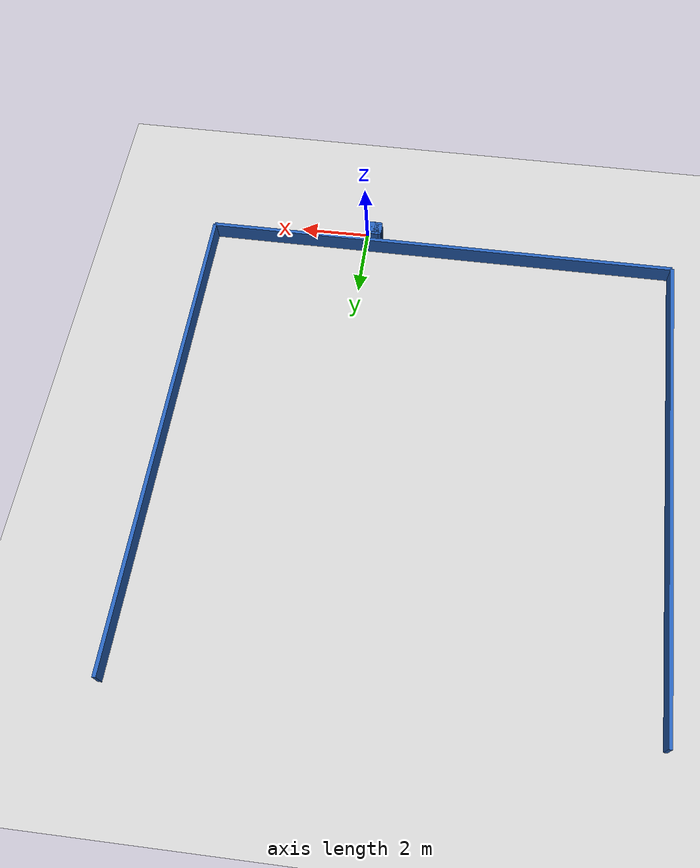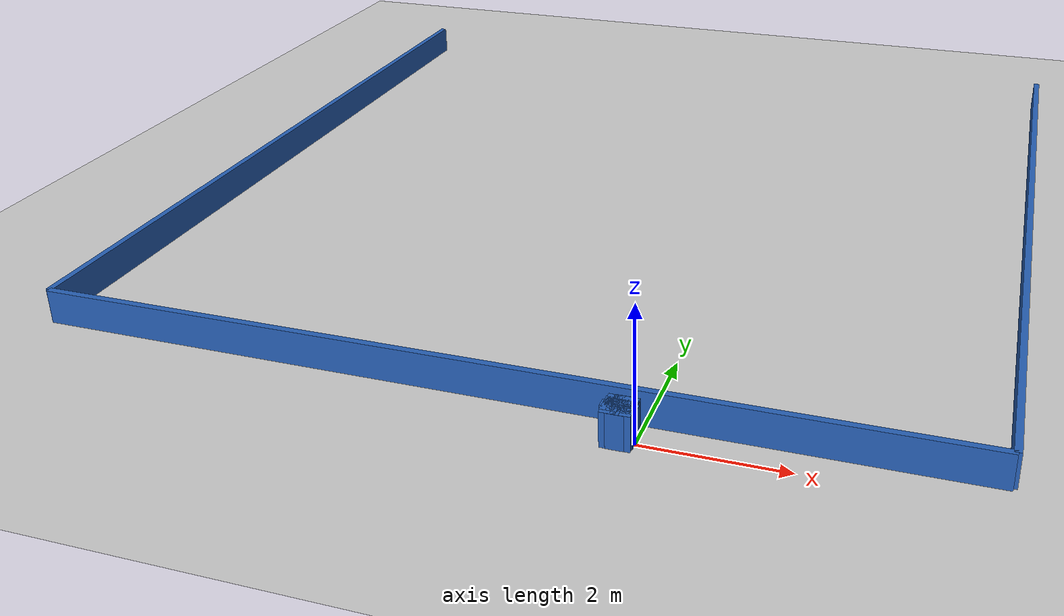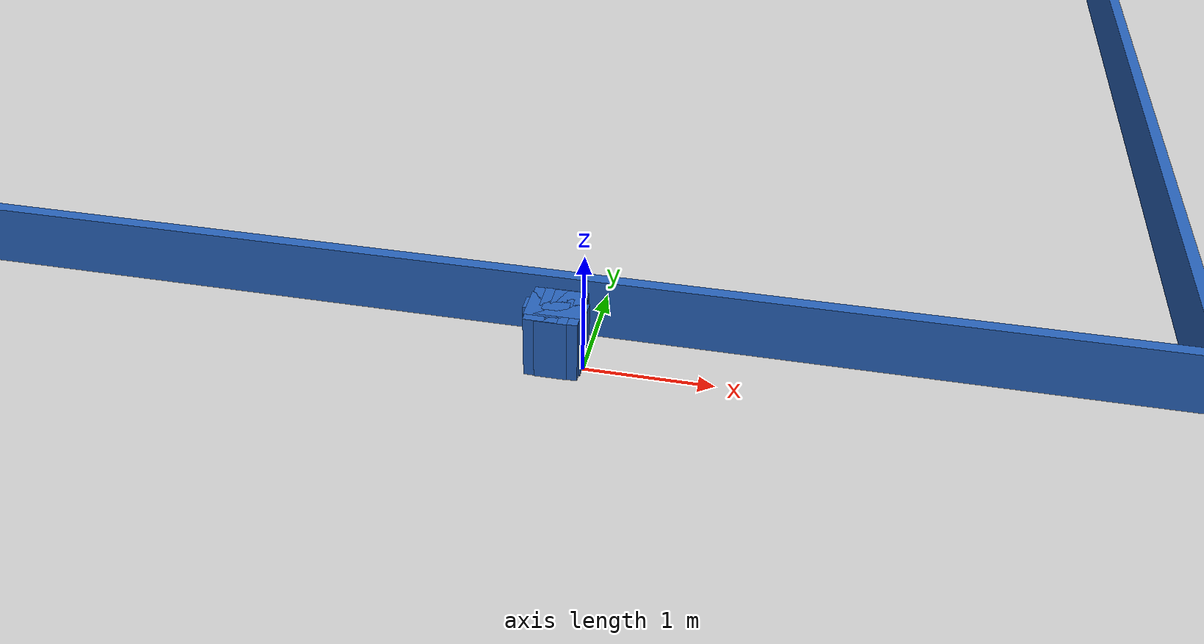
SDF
<?xml version="1.0" ?>
    <sdf version="1.5">
      <world name="default">
        <!-- A global light source -->
        <include>
          <uri>model://sun</uri>
        </include>
        <!-- A ground plane -->
        <include>
          <uri>model://ground_plane</uri>
        </include>

    <model name='libopen_space_final_T2B_122_30'>
      <static>1</static>
      <pose frame=''>-0.225000 0.075000 0.000000 0.000000 0.000000 0.000000</pose>
      <link name='link'>
        <inertial>
          <mass>1</mass>
          <inertia>
            <ixx>0.145833</ixx>
            <ixy>0</ixy>
            <ixz>0</ixz>
            <iyy>0.145833</iyy>
            <iyz>0</iyz>
            <izz>0.125</izz>
          </inertia>
        </inertial>
        <collision name='collision'>
          <geometry>
            <box>
              <size>0.42 0.26 1</size>
            </box>
          </geometry>
          <max_contacts>10</max_contacts>
          <surface>
            <contact>
              <ode/>
            </contact>
            <bounce/>
            <friction>
              <torsional>
                <ode/>
              </torsional>
              <ode/>
            </friction>
          </surface>
        </collision>
        <visual name='visual'>
          <geometry>
            <box>
              <size>0.42 0.26 1</size>
            </box>
          </geometry>
	    <material>
              <ambient>0.152000 0.379000 0.720000 1</ambient>
	      <diffuse>0.152000 0.379000 0.720000 1</diffuse>
          </material>
          <material>
            <script>
              <name>Gazebo/Grey</name>
              <uri>file://media/materials/scripts/gazebo.material</uri>
            </script>
          </material>
        </visual>
        <self_collide>0</self_collide>
        <kinematic>0</kinematic>
        <gravity>1</gravity>
      </link>
      <plugin name='libopen_space_final_T2B_122_30' filename='libopen_space_final_T2B_122_30.so'/>
    </model>

    <model name='libopen_space_final_T2B_112_28'>
      <static>1</static>
      <pose frame=''>-0.225000 0.075000 0.000000 0.000000 0.000000 0.000000</pose>
      <link name='link'>
        <inertial>
          <mass>1</mass>
          <inertia>
            <ixx>0.145833</ixx>
            <ixy>0</ixy>
            <ixz>0</ixz>
            <iyy>0.145833</iyy>
            <iyz>0</iyz>
            <izz>0.125</izz>
          </inertia>
        </inertial>
        <collision name='collision'>
          <geometry>
            <box>
              <size>0.41 0.43 1</size>
            </box>
          </geometry>
          <max_contacts>10</max_contacts>
          <surface>
            <contact>
              <ode/>
            </contact>
            <bounce/>
            <friction>
              <torsional>
                <ode/>
              </torsional>
              <ode/>
            </friction>
          </surface>
        </collision>
        <visual name='visual'>
          <geometry>
            <box>
              <size>0.41 0.43 1</size>
            </box>
          </geometry>
	    <material>
              <ambient>0.152000 0.379000 0.720000 1</ambient>
	      <diffuse>0.152000 0.379000 0.720000 1</diffuse>
          </material>
          <material>
            <script>
              <name>Gazebo/Grey</name>
              <uri>file://media/materials/scripts/gazebo.material</uri>
            </script>
          </material>
        </visual>
        <self_collide>0</self_collide>
        <kinematic>0</kinematic>
        <gravity>1</gravity>
      </link>
      <plugin name='libopen_space_final_T2B_112_28' filename='libopen_space_final_T2B_112_28.so'/>
    </model>

    <model name='libopen_space_final_T2B_57_10'>
      <static>1</static>
      <pose frame=''>-0.225000 0.075000 0.000000 0.000000 0.000000 0.000000</pose>
      <link name='link'>
        <inertial>
          <mass>1</mass>
          <inertia>
            <ixx>0.145833</ixx>
            <ixy>0</ixy>
            <ixz>0</ixz>
            <iyy>0.145833</iyy>
            <iyz>0</iyz>
            <izz>0.125</izz>
          </inertia>
        </inertial>
        <collision name='collision'>
          <geometry>
            <box>
              <size>0.24 0.22 1</size>
            </box>
          </geometry>
          <max_contacts>10</max_contacts>
          <surface>
            <contact>
              <ode/>
            </contact>
            <bounce/>
            <friction>
              <torsional>
                <ode/>
              </torsional>
              <ode/>
            </friction>
          </surface>
        </collision>
        <visual name='visual'>
          <geometry>
            <box>
              <size>0.24 0.22 1</size>
            </box>
          </geometry>
	    <material>
              <ambient>0.152000 0.379000 0.720000 1</ambient>
	      <diffuse>0.152000 0.379000 0.720000 1</diffuse>
          </material>
          <material>
            <script>
              <name>Gazebo/Grey</name>
              <uri>file://media/materials/scripts/gazebo.material</uri>
            </script>
          </material>
        </visual>
        <self_collide>0</self_collide>
        <kinematic>0</kinematic>
        <gravity>1</gravity>
      </link>
      <plugin name='libopen_space_final_T2B_57_10' filename='libopen_space_final_T2B_57_10.so'/>
    </model>

    <model name='libopen_space_final_T2B_129_21'>
      <static>1</static>
      <pose frame=''>-0.225000 0.075000 0.000000 0.000000 0.000000 0.000000</pose>
      <link name='link'>
        <inertial>
          <mass>1</mass>
          <inertia>
            <ixx>0.145833</ixx>
            <ixy>0</ixy>
            <ixz>0</ixz>
            <iyy>0.145833</iyy>
            <iyz>0</iyz>
            <izz>0.125</izz>
          </inertia>
        </inertial>
        <collision name='collision'>
          <geometry>
            <box>
              <size>0.48 0.14 1</size>
            </box>
          </geometry>
          <max_contacts>10</max_contacts>
          <surface>
            <contact>
              <ode/>
            </contact>
            <bounce/>
            <friction>
              <torsional>
                <ode/>
              </torsional>
              <ode/>
            </friction>
          </surface>
        </collision>
        <visual name='visual'>
          <geometry>
            <box>
              <size>0.48 0.14 1</size>
            </box>
          </geometry>
	    <material>
              <ambient>0.152000 0.379000 0.720000 1</ambient>
	      <diffuse>0.152000 0.379000 0.720000 1</diffuse>
          </material>
          <material>
            <script>
              <name>Gazebo/Grey</name>
              <uri>file://media/materials/scripts/gazebo.material</uri>
            </script>
          </material>
        </visual>
        <self_collide>0</self_collide>
        <kinematic>0</kinematic>
        <gravity>1</gravity>
      </link>
      <plugin name='libopen_space_final_T2B_129_21' filename='libopen_space_final_T2B_129_21.so'/>
    </model>

    <model name='libopen_space_final_T2B_90_95'>
      <static>1</static>
      <pose frame=''>-0.225000 0.075000 0.000000 0.000000 0.000000 0.000000</pose>
      <link name='link'>
        <inertial>
          <mass>1</mass>
          <inertia>
            <ixx>0.145833</ixx>
            <ixy>0</ixy>
            <ixz>0</ixz>
            <iyy>0.145833</iyy>
            <iyz>0</iyz>
            <izz>0.125</izz>
          </inertia>
        </inertial>
        <collision name='collision'>
          <geometry>
            <box>
              <size>0.20 0.12 1</size>
            </box>
          </geometry>
          <max_contacts>10</max_contacts>
          <surface>
            <contact>
              <ode/>
            </contact>
            <bounce/>
            <friction>
              <torsional>
                <ode/>
              </torsional>
              <ode/>
            </friction>
          </surface>
        </collision>
        <visual name='visual'>
          <geometry>
            <box>
              <size>0.20 0.12 1</size>
            </box>
          </geometry>
	    <material>
              <ambient>0.152000 0.379000 0.720000 1</ambient>
	      <diffuse>0.152000 0.379000 0.720000 1</diffuse>
          </material>
          <material>
            <script>
              <name>Gazebo/Grey</name>
              <uri>file://media/materials/scripts/gazebo.material</uri>
            </script>
          </material>
        </visual>
        <self_collide>0</self_collide>
        <kinematic>0</kinematic>
        <gravity>1</gravity>
      </link>
      <plugin name='libopen_space_final_T2B_90_95' filename='libopen_space_final_T2B_90_95.so'/>
    </model>

    <model name='libopen_space_final_T2B_92_34'>
      <static>1</static>
      <pose frame=''>-0.225000 0.075000 0.000000 0.000000 0.000000 0.000000</pose>
      <link name='link'>
        <inertial>
          <mass>1</mass>
          <inertia>
            <ixx>0.145833</ixx>
            <ixy>0</ixy>
            <ixz>0</ixz>
            <iyy>0.145833</iyy>
            <iyz>0</iyz>
            <izz>0.125</izz>
          </inertia>
        </inertial>
        <collision name='collision'>
          <geometry>
            <box>
              <size>0.36 0.23 1</size>
            </box>
          </geometry>
          <max_contacts>10</max_contacts>
          <surface>
            <contact>
              <ode/>
            </contact>
            <bounce/>
            <friction>
              <torsional>
                <ode/>
              </torsional>
              <ode/>
            </friction>
          </surface>
        </collision>
        <visual name='visual'>
          <geometry>
            <box>
              <size>0.36 0.23 1</size>
            </box>
          </geometry>
	    <material>
              <ambient>0.152000 0.379000 0.720000 1</ambient>
	      <diffuse>0.152000 0.379000 0.720000 1</diffuse>
          </material>
          <material>
            <script>
              <name>Gazebo/Grey</name>
              <uri>file://media/materials/scripts/gazebo.material</uri>
            </script>
          </material>
        </visual>
        <self_collide>0</self_collide>
        <kinematic>0</kinematic>
        <gravity>1</gravity>
      </link>
      <plugin name='libopen_space_final_T2B_92_34' filename='libopen_space_final_T2B_92_34.so'/>
    </model>

    <model name='libopen_space_final_T2B_81_68'>
      <static>1</static>
      <pose frame=''>-0.225000 0.075000 0.000000 0.000000 0.000000 0.000000</pose>
      <link name='link'>
        <inertial>
          <mass>1</mass>
          <inertia>
            <ixx>0.145833</ixx>
            <ixy>0</ixy>
            <ixz>0</ixz>
            <iyy>0.145833</iyy>
            <iyz>0</iyz>
            <izz>0.125</izz>
          </inertia>
        </inertial>
        <collision name='collision'>
          <geometry>
            <box>
              <size>0.25 0.10 1</size>
            </box>
          </geometry>
          <max_contacts>10</max_contacts>
          <surface>
            <contact>
              <ode/>
            </contact>
            <bounce/>
            <friction>
              <torsional>
                <ode/>
              </torsional>
              <ode/>
            </friction>
          </surface>
        </collision>
        <visual name='visual'>
          <geometry>
            <box>
              <size>0.25 0.10 1</size>
            </box>
          </geometry>
	    <material>
              <ambient>0.152000 0.379000 0.720000 1</ambient>
	      <diffuse>0.152000 0.379000 0.720000 1</diffuse>
          </material>
          <material>
            <script>
              <name>Gazebo/Grey</name>
              <uri>file://media/materials/scripts/gazebo.material</uri>
            </script>
          </material>
        </visual>
        <self_collide>0</self_collide>
        <kinematic>0</kinematic>
        <gravity>1</gravity>
      </link>
      <plugin name='libopen_space_final_T2B_81_68' filename='libopen_space_final_T2B_81_68.so'/>
    </model>

    <model name='libopen_space_final_T2B_73_39'>
      <static>1</static>
      <pose frame=''>-0.225000 0.075000 0.000000 0.000000 0.000000 0.000000</pose>
      <link name='link'>
        <inertial>
          <mass>1</mass>
          <inertia>
            <ixx>0.145833</ixx>
            <ixy>0</ixy>
            <ixz>0</ixz>
            <iyy>0.145833</iyy>
            <iyz>0</iyz>
            <izz>0.125</izz>
          </inertia>
        </inertial>
        <collision name='collision'>
          <geometry>
            <box>
              <size>0.25 0.44 1</size>
            </box>
          </geometry>
          <max_contacts>10</max_contacts>
          <surface>
            <contact>
              <ode/>
            </contact>
            <bounce/>
            <friction>
              <torsional>
                <ode/>
              </torsional>
              <ode/>
            </friction>
          </surface>
        </collision>
        <visual name='visual'>
          <geometry>
            <box>
              <size>0.25 0.44 1</size>
            </box>
          </geometry>
	    <material>
              <ambient>0.152000 0.379000 0.720000 1</ambient>
	      <diffuse>0.152000 0.379000 0.720000 1</diffuse>
          </material>
          <material>
            <script>
              <name>Gazebo/Grey</name>
              <uri>file://media/materials/scripts/gazebo.material</uri>
            </script>
          </material>
        </visual>
        <self_collide>0</self_collide>
        <kinematic>0</kinematic>
        <gravity>1</gravity>
      </link>
      <plugin name='libopen_space_final_T2B_73_39' filename='libopen_space_final_T2B_73_39.so'/>
    </model>

    <model name='libopen_space_final_T2B_112_81'>
      <static>1</static>
      <pose frame=''>-0.225000 0.075000 0.000000 0.000000 0.000000 0.000000</pose>
      <link name='link'>
        <inertial>
          <mass>1</mass>
          <inertia>
            <ixx>0.145833</ixx>
            <ixy>0</ixy>
            <ixz>0</ixz>
            <iyy>0.145833</iyy>
            <iyz>0</iyz>
            <izz>0.125</izz>
          </inertia>
        </inertial>
        <collision name='collision'>
          <geometry>
            <box>
              <size>0.10 0.43 1</size>
            </box>
          </geometry>
          <max_contacts>10</max_contacts>
          <surface>
            <contact>
              <ode/>
            </contact>
            <bounce/>
            <friction>
              <torsional>
                <ode/>
              </torsional>
              <ode/>
            </friction>
          </surface>
        </collision>
        <visual name='visual'>
          <geometry>
            <box>
              <size>0.10 0.43 1</size>
            </box>
          </geometry>
	    <material>
              <ambient>0.152000 0.379000 0.720000 1</ambient>
	      <diffuse>0.152000 0.379000 0.720000 1</diffuse>
          </material>
          <material>
            <script>
              <name>Gazebo/Grey</name>
              <uri>file://media/materials/scripts/gazebo.material</uri>
            </script>
          </material>
        </visual>
        <self_collide>0</self_collide>
        <kinematic>0</kinematic>
        <gravity>1</gravity>
      </link>
      <plugin name='libopen_space_final_T2B_112_81' filename='libopen_space_final_T2B_112_81.so'/>
    </model>

    <model name='libopen_space_final_T2B_100_36'>
      <static>1</static>
      <pose frame=''>-0.225000 0.075000 0.000000 0.000000 0.000000 0.000000</pose>
      <link name='link'>
        <inertial>
          <mass>1</mass>
          <inertia>
            <ixx>0.145833</ixx>
            <ixy>0</ixy>
            <ixz>0</ixz>
            <iyy>0.145833</iyy>
            <iyz>0</iyz>
            <izz>0.125</izz>
          </inertia>
        </inertial>
        <collision name='collision'>
          <geometry>
            <box>
              <size>0.43 0.30 1</size>
            </box>
          </geometry>
          <max_contacts>10</max_contacts>
          <surface>
            <contact>
              <ode/>
            </contact>
            <bounce/>
            <friction>
              <torsional>
                <ode/>
              </torsional>
              <ode/>
            </friction>
          </surface>
        </collision>
        <visual name='visual'>
          <geometry>
            <box>
              <size>0.43 0.30 1</size>
            </box>
          </geometry>
	    <material>
              <ambient>0.152000 0.379000 0.720000 1</ambient>
	      <diffuse>0.152000 0.379000 0.720000 1</diffuse>
          </material>
          <material>
            <script>
              <name>Gazebo/Grey</name>
              <uri>file://media/materials/scripts/gazebo.material</uri>
            </script>
          </material>
        </visual>
        <self_collide>0</self_collide>
        <kinematic>0</kinematic>
        <gravity>1</gravity>
      </link>
      <plugin name='libopen_space_final_T2B_100_36' filename='libopen_space_final_T2B_100_36.so'/>
    </model>

        <model name='bottom_wall'>
          <static>1</static>
          <pose frame=''>-2.25 0.5 0.000000 0.000000 0.000000 1.57079632</pose>
          <link name='link'>
            <inertial>
            <mass>1</mass>
            <inertia>
              <ixx>0.145833</ixx>
              <ixy>0</ixy>
              <ixz>0</ixz>
              <iyy>0.145833</iyy>
              <iyz>0</iyz>
              <izz>0.125</izz>
            </inertia>
            </inertial>
            <collision name='collision'>
            <geometry>
              <box>
              <size>0.1 13.5 1</size>
              </box>
            </geometry>
            <max_contacts>10</max_contacts>
            <surface>
              <contact>
              <ode/>
              </contact>
              <bounce/>
              <friction>
              <torsional>
                <ode/>
              </torsional>
              <ode/>
              </friction>
            </surface>
            </collision>
            <visual name='visual'>
            <geometry>
              <box>
              <size>0.1 13.5 1</size>
              </box>
            </geometry>
            <material>
              <ambient>0.152000 0.379000 0.720000 1</ambient>
            <diffuse>0.152000 0.379000 0.720000 1</diffuse>
            </material>
            <material>
              <script>
              <name>Gazebo/Grey</name>
              <uri>file://media/materials/scripts/gazebo.material</uri>
              </script>
            </material>
            </visual>
            <self_collide>0</self_collide>
            <kinematic>0</kinematic>
            <gravity>1</gravity>
          </link>
        </model>

        <model name='left_wall'>
          <static>1</static>
          <pose frame=''>-9 7.25 0.000000 0.000000 0.000000 0.000000</pose>
          <link name='link'>
            <inertial>
            <mass>1</mass>
            <inertia>
              <ixx>0.145833</ixx>
              <ixy>0</ixy>
              <ixz>0</ixz>
              <iyy>0.145833</iyy>
              <iyz>0</iyz>
              <izz>0.125</izz>
            </inertia>
            </inertial>
            <collision name='collision'>
            <geometry>
              <box>
              <size>0.1 13.5 1</size>
              </box>
            </geometry>
            <max_contacts>10</max_contacts>
            <surface>
              <contact>
              <ode/>
              </contact>
              <bounce/>
              <friction>
              <torsional>
                <ode/>
              </torsional>
              <ode/>
              </friction>
            </surface>
            </collision>
            <visual name='visual'>
            <geometry>
              <box>
              <size>0.1 13.5 1</size>
              </box>
            </geometry>
            <material>
              <ambient>0.152000 0.379000 0.720000 1</ambient>
            <diffuse>0.152000 0.379000 0.720000 1</diffuse>
            </material>
            <material>
              <script>
              <name>Gazebo/Grey</name>
              <uri>file://media/materials/scripts/gazebo.material</uri>
              </script>
            </material>
            </visual>
            <self_collide>0</self_collide>
            <kinematic>0</kinematic>
            <gravity>1</gravity>
          </link>
        </model>

        <model name='right_wall'>
          <static>1</static>
          <pose frame=''>4.5 7.25 0.000000 0.000000 0.000000 0.000000</pose>
          <link name='link'>
            <inertial>
            <mass>1</mass>
            <inertia>
              <ixx>0.145833</ixx>
              <ixy>0</ixy>
              <ixz>0</ixz>
              <iyy>0.145833</iyy>
              <iyz>0</iyz>
              <izz>0.125</izz>
            </inertia>
            </inertial>
            <collision name='collision'>
            <geometry>
              <box>
              <size>0.1 13.5 1</size>
              </box>
            </geometry>
            <max_contacts>10</max_contacts>
            <surface>
              <contact>
              <ode/>
              </contact>
              <bounce/>
              <friction>
              <torsional>
                <ode/>
              </torsional>
              <ode/>
              </friction>
            </surface>
            </collision>
            <visual name='visual'>
            <geometry>
              <box>
              <size>0.1 13.5 1</size>
              </box>
            </geometry>
            <material>
              <ambient>0.152000 0.379000 0.720000 1</ambient>
            <diffuse>0.152000 0.379000 0.720000 1</diffuse>
            </material>
            <material>
              <script>
              <name>Gazebo/Grey</name>
              <uri>file://media/materials/scripts/gazebo.material</uri>
              </script>
            </material>
            </visual>
            <self_collide>0</self_collide>
            <kinematic>0</kinematic>
            <gravity>1</gravity>
          </link>
        </model>

      </world>
    </sdf>"
